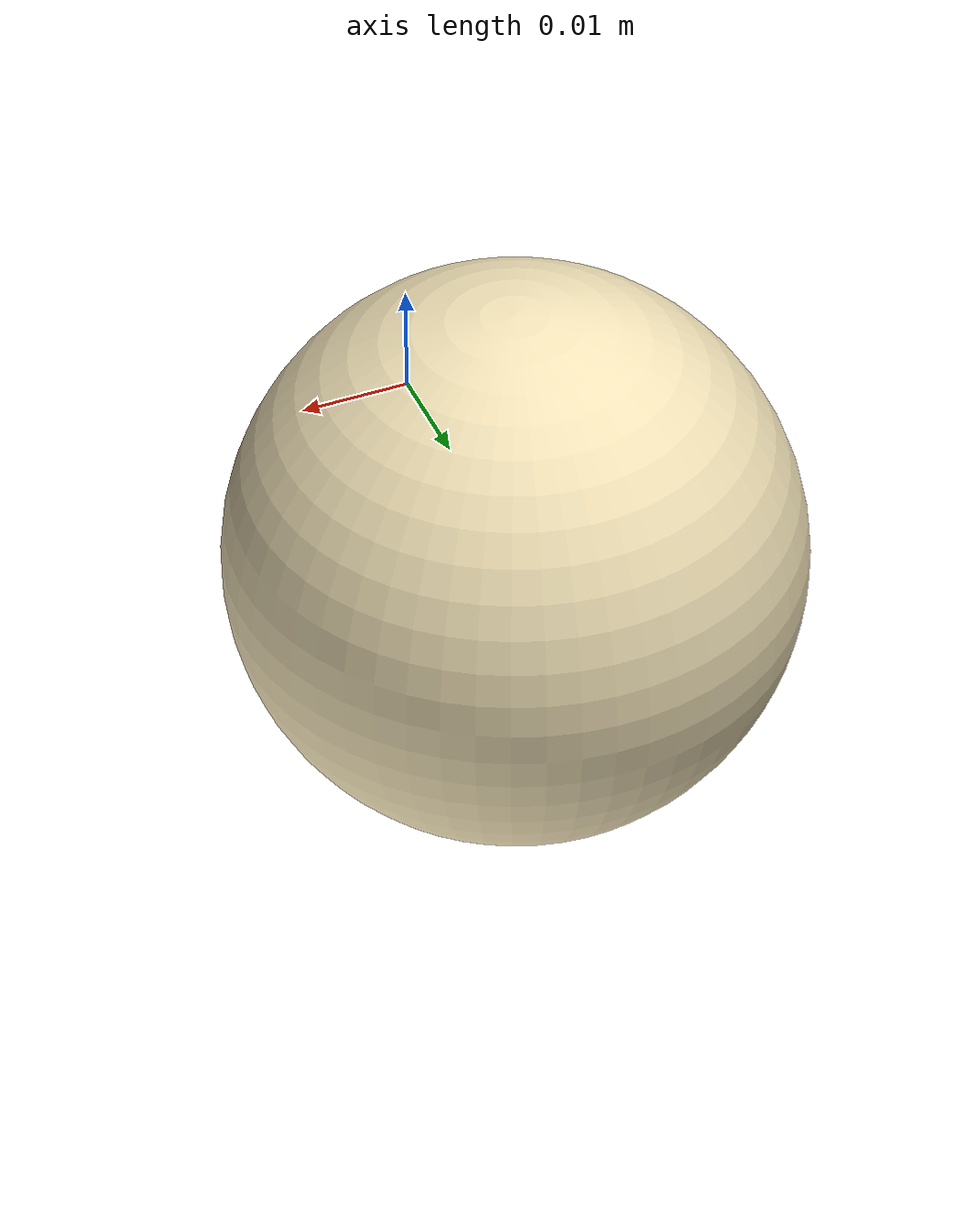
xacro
<?xml version="1.0"?>
<robot name="ball05" xmlns:xacro="http://www.ros.org/wiki/xacro">

  <link name="ball05_link">
    <visual>
      <geometry>
        <mesh filename="package://qm_description/meshes/sar/Sphere5.stl" scale="0.001 0.001 0.001"/>
      </geometry>
      <material name="ocher">
          <color rgba="0.949 0.890 0.722 1"/>
      </material>
    </visual>
    <collision>
      <geometry>
        <mesh filename="package://qm_description/meshes/sar/Sphere5.stl" scale="0.001 0.001 0.001"/>
      </geometry>
    </collision>
    <inertial>
      <mass value="1.0"/>
      <inertia ixx="0.0001" ixy="0.0" ixz="0.0" iyy="0.0001" iyz="0.0" izz="0.0001"/>
    </inertial>
  </link>

  <gazebo reference="ball05_link">
    <material>Gazebo/Black</material>
  </gazebo>

  <!-- Wall fixed to the world-->
  <link name="world"/>

  <joint name="base_link_fixed" type="fixed">
    <parent link="world"/>
    <child link="ball05_link"/>
  </joint>

</robot>
